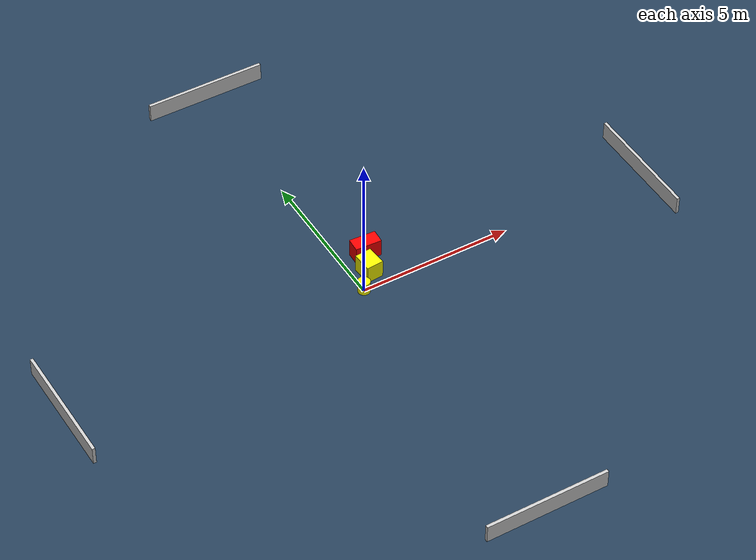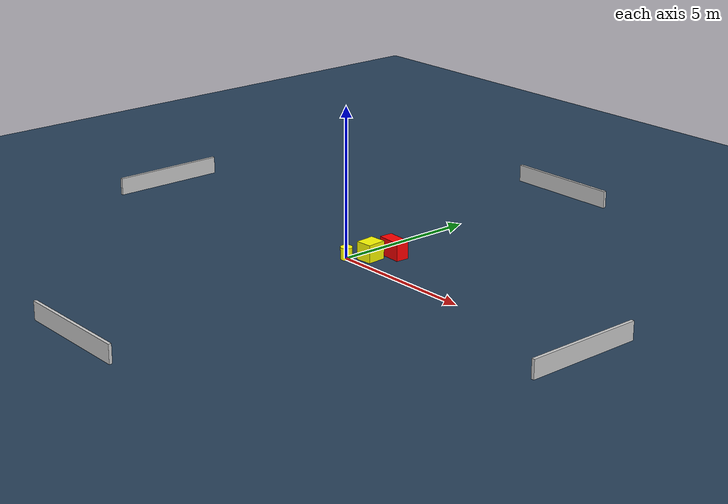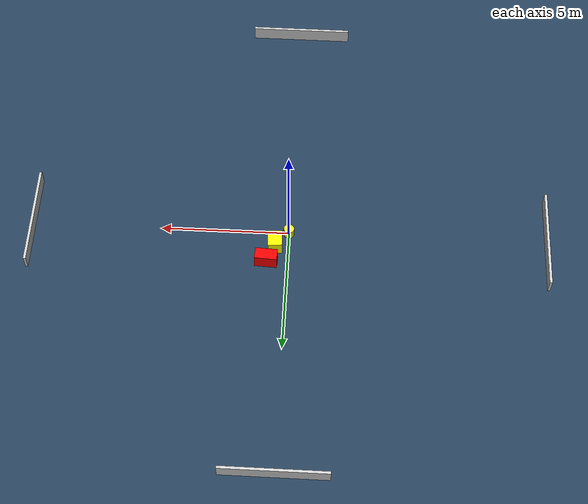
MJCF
<?xml version="1.0" ?>
<mujoco model="generated_environment">
  <option timestep="0.01" integrator="RK4" cone="elliptic"/>
  <default>
    <geom density="1"/>
  </default>
  <asset>
    <texture builtin="gradient" height="3072" name="skybox" rgb1="0.3 0.5 0.7" rgb2="0 0 0" type="skybox" width="512"/>
    <texture builtin="checker" height="300" name="groundplane" rgb1="0.2 0.3 0.4" rgb2="0.1 0.2 0.3" type="2d" width="300"/>
    <material name="groundplane" reflectance="0.2" texrepeat="5 5" texture="groundplane"/>
  </asset>
  <worldbody>
    <light dir="0 0 -1" directional="true" pos="0 0 1.5"/>
    <geom condim="3" friction="0.5 0.005 0.001" material="groundplane" name="floor" pos="0 0 0" size="0 0 0.05" type="plane"/>
    <body name="walls">
      <geom name="wall_1" condim="4" pos="-10.0 0.0 0.3" rgba="0.800000011920929 0.800000011920929 0.800000011920929 1.0" size="0.05 2.0 0.3" type="box"/>
      <geom name="wall_2" condim="4" pos="10.0 0.0 0.3" rgba="0.800000011920929 0.800000011920929 0.800000011920929 1.0" size="0.05 2.0 0.3" type="box"/>
      <geom name="wall_3" condim="4" pos="0.0 -10.0 0.3" rgba="0.800000011920929 0.800000011920929 0.800000011920929 1.0" size="2.0 0.05 0.3" type="box"/>
      <geom name="wall_4" condim="4" pos="0.0 10.0 0.3" rgba="0.800000011920929 0.800000011920929 0.800000011920929 1.0" size="2.0 0.05 0.3" type="box"/>
    </body>
    <body name="robot">
      <joint name="joint_x" type="slide" pos="0 0 0" axis="1 0 0"/>
      <joint name="joint_y" type="slide" pos="0 0 0" axis="0 1 0"/>
      <geom name="robot" type="cylinder" pos="0.0 0.0 0.2" size="0.2 0.2 0.0" mass="5.0" friction="1.0 0.005 0.0001" condim="4" rgba="1.0 1.0 0.0 1.0"/>
    </body>
    <body name="obstacle_1_movable">
      <geom name="obstacle_1_movable" condim="4" pos="0.5114001668945184 0.5714657409388401 0.3" euler="0 0 94.40754026807713" friction="0.0 0.005 0.001" rgba="1.0 1.0 0.0 1.0" size="0.3266371891463271 0.2763479091753408 0.3" type="box" mass="0.1"/>
      <joint type="free"/>
    </body>
    <body name="obstacle_2_static">
      <geom name="obstacle_2_static" condim="4" pos="0.8134096946640771 1.2957973904857352 0.3" euler="0 0 356.96783540284616" friction="0.0 0.005 0.001" rgba="1.0 0.0 0.0 1.0" size="0.4310464468312276 0.22783690236842644 0.3" type="box"/>
    </body>
  </worldbody>
  <actuator>
    <motor name="actuator_x" joint="joint_x" gear="1" ctrlrange="-1 1"/>
    <motor name="actuator_y" joint="joint_y" gear="1" ctrlrange="-1 1"/>
  </actuator>
</mujoco>
